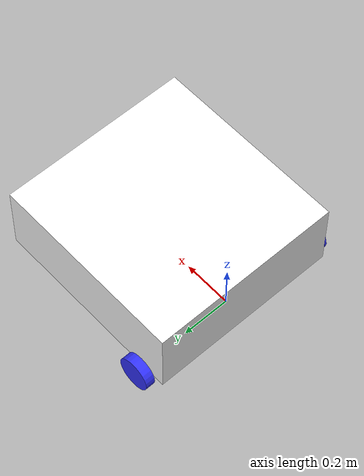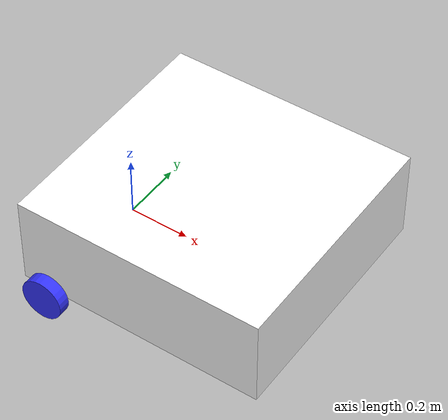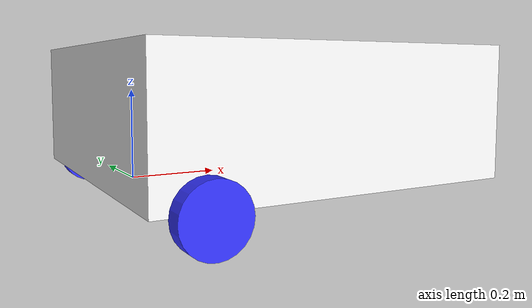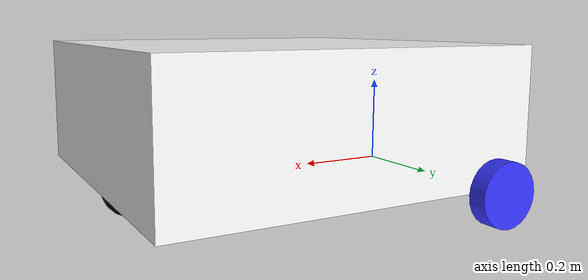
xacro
<?xml version="1.0"?>
<robot xmlns:xacro="http://www.ros.org/wiki/xacro" >

    <xacro:include filename="inertial_macros.xacro"/>

    <material name="white">
        <color rgba="1 1 1 1"/>
    </material>

    <material name="orange">
        <color rgba="1 0.3 0.1 1"/>
    </material>

    <material name="blue">
        <color rgba="0.2 0.2 1 1"/>
    </material>

    <material name="black">
        <color rgba="0 0 0 1"/>
    </material>

    <material name="red">
        <color rgba="1 0 0 1"/>
    </material>

    <link name="base_link">

    </link>

    <joint name="base_footprint_joint" type="fixed">
        <parent link="base_link"/>
        <child link="base_footprint"/>
        <origin xyz="0 0 0" rpy="0 0 0"/>
    </joint>

    <link name="base_footprint">
    </link>

    <joint name="chassis_joint" type="fixed">
        <parent link="base_link"/>
        <child link="chassis"/>
        <origin xyz="-0.1 0 0"/>
    </joint>

    <link name="chassis">
        <visual>
            <origin xyz="0.411 0 0.15"/>
            <geometry>
                <box size ="0.822 0.8 0.3"/>
            </geometry>
            <material name="white"/>
        </visual>
        <collision>
            <origin xyz="0.411 0 0.15"/>
            <geometry>
                <box size ="0.822 0.8 0.3"/>
            </geometry>
        </collision>
        <xacro:inertial_box mass="0.5" x="0.822" y="0.8" z="0.3">
            <origin xyz="0.411 0 0.15" rpy="0 0 0"/>
        </xacro:inertial_box>
    </link>

    <gazebo reference="chassis">
        <material>Gazebo/White</material>
    </gazebo>

    <!-- LEFT WHEEL LINK -->

    <joint name="left_wheel_joint" type="continuous">
        <parent link="base_link"/>
        <child link="left_wheel"/>
        <origin xyz="0 0.43 0" rpy="-${pi/2} 0 0"/>
        <axis xyz="0 0 1"/>
    </joint>

    <link name="left_wheel">
        <visual>
            <geometry>
                <cylinder radius ="0.07" length="0.04"/>
            </geometry>
            <material name="blue"/>
        </visual>
        <collision>
            <geometry>
                <sphere radius ="0.07"/>
            </geometry>
        </collision>
        <xacro:inertial_cylinder mass="0.1" length="0.04" radius="0.07">
            <origin xyz="0 0 0" rpy="0 0 0"/>
        </xacro:inertial_cylinder>
    </link>

    <gazebo reference="left_wheel">
        <material>Gazebo/Blue</material>
    </gazebo>

    <joint name="right_wheel_joint" type="continuous">
        <parent link="base_link"/>
        <child link="right_wheel"/>
        <origin xyz="0 -0.43 0" rpy="${pi/2} 0 0"/>
        <axis xyz="0 0 -1"/>
    </joint>

    <link name="right_wheel">
        <visual>
            <geometry>
                <cylinder radius ="0.07" length="0.04"/>
            </geometry>
            <material name="blue"/>
        </visual>
        <collision>
            <geometry>
                <sphere radius ="0.07"/>
            </geometry>
        </collision>
        <xacro:inertial_cylinder mass="0.1" length="0.04" radius="0.07">
            <origin xyz="0 0 0" rpy="0 0 0"/>
        </xacro:inertial_cylinder>
    </link>

    <gazebo reference="right_wheel">
        <material>Gazebo/Blue</material>
    </gazebo>

    <joint name="caster_wheel_joint" type="fixed">
        <parent link="chassis"/>
        <child link="caster_wheel"/>
        <origin xyz="0.74 0 0" rpy="0 0 0"/>
    </joint>

    <link name="caster_wheel">
        <visual>
            <geometry>
                <sphere radius="0.07" />
            </geometry>
            <material name="black"/>
        </visual>
        <collision>
            <geometry>
                <sphere radius="0.07" />
            </geometry>
            <material name="black"/>
        </collision>
        <xacro:inertial_sphere mass="0.1" radius="0.07">
            <origin xyz="0 0 0" rpy="0 0 0"/>
        </xacro:inertial_sphere>
    </link>

    <gazebo reference="caster_wheel">
        <material>Gazebo/Black</material>
        <mu1 value="0.001"/>
        <mu2 value="0.001"/>
    </gazebo>

</robot>
